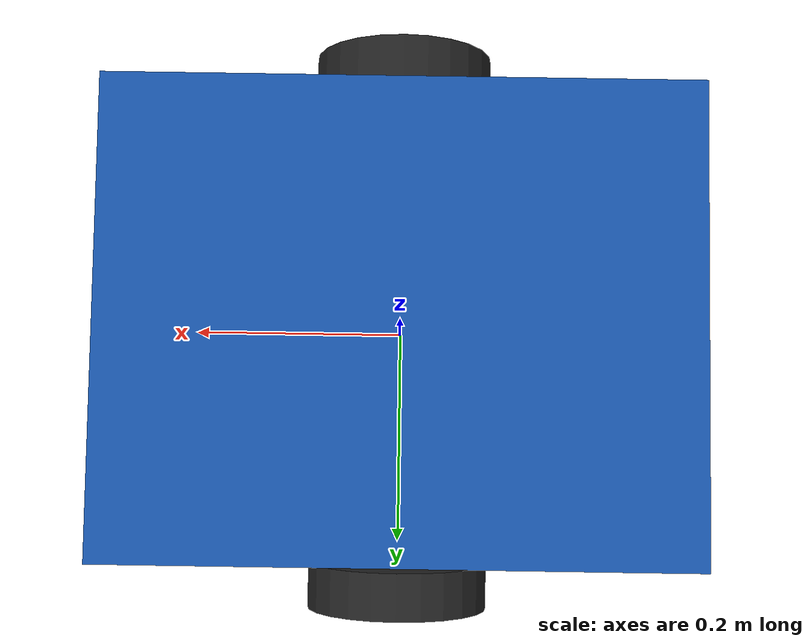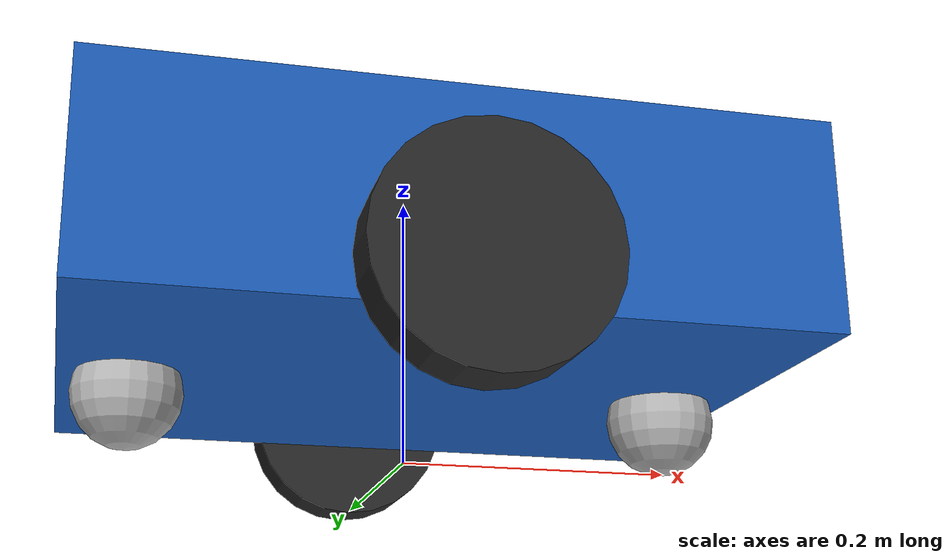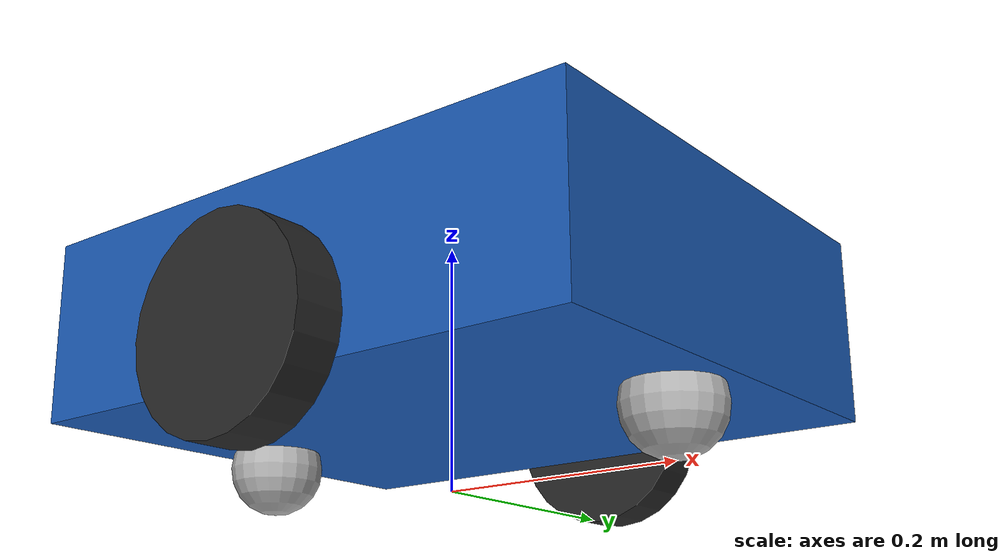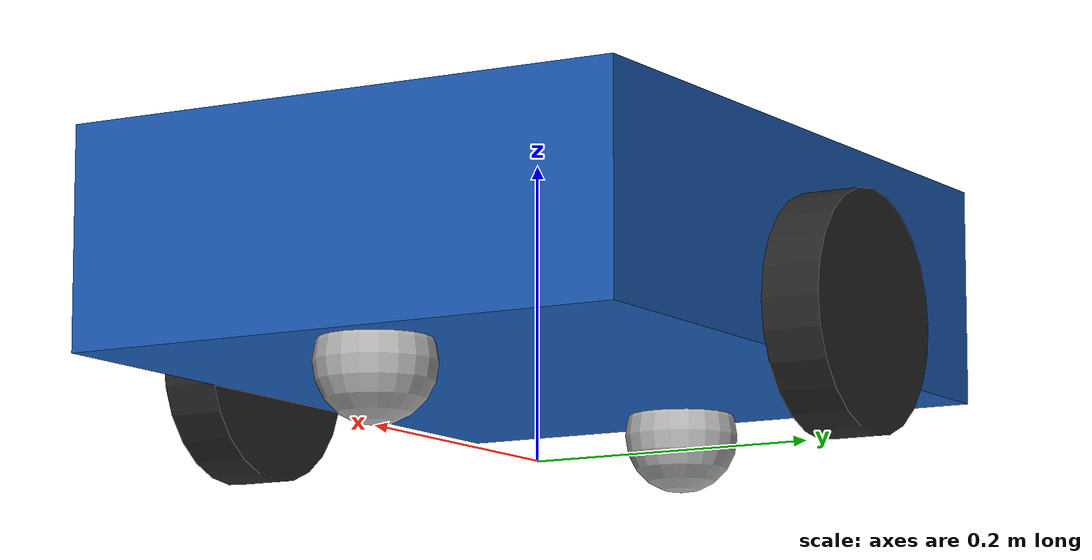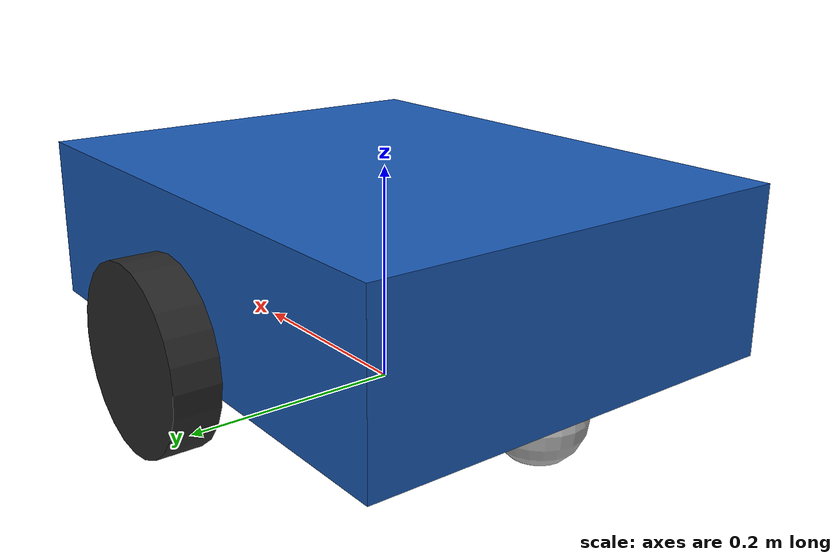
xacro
<?xml version="1.0" ?>

<robot name="nova" xmlns:xacro="http://www.ros.org/wiki/xacro">

  <!-- Chassis: The chassis is a box, the geometry of the base_link -->
  <xacro:property name="chassis_length" value="0.50" /> <!-- x axis, front to back -->
  <xacro:property name="chassis_width" value="0.40" />  <!-- y axis, side to side -->
  <xacro:property name="chassis_height" value="0.15" /> <!-- z axis, bottom to top -->
  <xacro:property name="chassis_mass"  value="12" />
  <xacro:property name="chassis_z_offset" value="0.05" />

  <!-- Drive wheels -->
  <xacro:property name="wheel_radius" value="0.08" />
  <xacro:property name="wheel_width" value="0.04" />
  <xacro:property name="wheel_mass" value="1.0" />
  <xacro:property name="wheel_separation" value="0.46" />

  <!-- Casters -->
  <xacro:property name="caster_radius" value="0.04" />
  <xacro:property name="caster_mass" value="0.3" />
  <xacro:property name="caster_x" value="0.20" />

  <xacro:include filename="$(find nova_description)/urdf/materials.xacro" />
  <xacro:include filename="$(find nova_description)/urdf/inertials.xacro" />
  <xacro:include filename="$(find nova_description)/urdf/base.xacro" />
  <xacro:include filename="$(find nova_description)/urdf/wheel.xacro" />
  <xacro:wheel reflect="1" side="left" />
  <xacro:wheel reflect="-1" side="right" />

</robot>

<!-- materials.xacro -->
<robot>
  <material name="nova_blue">

    <color rgba="0.10 0.35 0.70 1.0" />

  </material>

  <material name="nova_dark_grey">

    <color rgba="0.15 0.15 0.15 1.0" />

  </material>

  <material name="nova_light_grey">

    <color rgba="0.7 0.7 0.7 1.0" />

  </material>

</robot>

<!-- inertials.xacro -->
<robot xmlns:xacro="http://www.ros.org/wiki/xacro">

  <xacro:macro name="box_inertia" params="mass x y z xyz:='0 0 0' rpy:='0 0 0'">

    <inertial>

      <origin xyz="${xyz}" rpy="${rpy}" />
      <mass value="${mass}" />

      <inertia ixx="${mass/12*(y*y + z*z)}" ixy="0" ixz="0"
               iyy="${mass/12*(x*x + z*z)}" iyz="0"
               izz="${mass/12*(x*x + y*y)}"/>

    </inertial>

  </xacro:macro>

  <xacro:macro name="cylinder_inertia" params="mass r h xyz:='0 0 0' rpy:='0 0 0'">

    <inertial>

      <origin xyz="${xyz}" rpy="${rpy}" />

      <mass value="${mass}" />

      <inertia ixx="${mass/12*(3*r**2 + h**2)}" ixy="0" ixz="0"
               iyy="${mass/12*(3*r**2 + h**2)}" iyz="0"
               izz="${(mass*r**2)/2}"  />

    </inertial>

  </xacro:macro>

  <xacro:macro name="sphere_inertia" params="mass r xyz:='0 0 0' rpy:='0 0 0'">

    <inertial>
      <origin xyz="${xyz}" rpy="${rpy}" />

      <mass value="${mass}" />

      <inertia ixx="${2/5*mass*r**2}" ixy="0" ixz="0"
               iyy="${2/5*mass*r**2}" iyz="0"
               izz="${2/5*mass*r**2}"  />

    </inertial>

  </xacro:macro>
</robot>

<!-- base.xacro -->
<robot xmlns:xacro="http://www.ros.org/wiki/xacro">

  <!-- Root frame. It is on the ground. It is empty -->

  <link name="base_footprint" />

  <link name="base_link">

    <visual>

      <origin xyz="0 0 ${chassis_z_offset}" rpy="0 0 0" />
      <geometry>
        <box size="${chassis_length} ${chassis_width} ${chassis_height}" />
      </geometry>

      <material name="nova_blue" />

    </visual>

    <collision>
      <origin xyz="0 0 ${chassis_z_offset}" rpy="0 0 0" />

      <geometry>
        <box size="${chassis_length} ${chassis_width} ${chassis_height}" />
      </geometry>

    </collision>

    <xacro:box_inertia mass="${chassis_mass}" x="${chassis_length}" y="${chassis_width}"
                       z="${chassis_height}" xyz="0 0 ${chassis_z_offset}"  />
  </link>

  <joint name="base_joint" type="fixed">
    <parent link="base_footprint" />
    <child link="base_link" />
    <origin xyz="0 0 ${wheel_radius}" rpy="0 0 0" />

  </joint>

  <xacro:macro name="caster" params="name_prefix x">

    <link name="${name_prefix}_caster_link">

      <visual>

        <origin xyz="0 0 0" rpy="0 0 0" />
        <geometry>
          <sphere radius="${caster_radius}" />

        </geometry>

        <material name="nova_light_grey" />

      </visual>

      <collision>

        <origin xyz="0 0 0" rpy="0 0 0" />
        <geometry>

          <sphere radius="${caster_radius}" />

        </geometry>

      </collision>

      <xacro:sphere_inertia mass="${caster_mass}" r="${caster_radius}" />

    </link>

    <joint name="${name_prefix}_caster_joint" type="fixed">

      <parent link="base_link" />
      <child link="${name_prefix}_caster_link" />

      <origin xyz="${x} 0 ${caster_radius - wheel_radius}" rpy="0 0 0" />
    </joint>
  </xacro:macro>

  <xacro:caster name_prefix="front" x="${caster_x}" />

  <xacro:caster name_prefix="rear" x="${-caster_x}" />
</robot>

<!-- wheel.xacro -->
<robot xmlns:xacro="http://www.ros.org/wiki/xacro">

  <xacro:macro name="wheel" params="side reflect" >

    <link name="${side}_wheel_link" >

      <visual>

        <origin xyz="0 0 0" rpy="${pi/2} 0 0" />

        <geometry>

          <cylinder radius="${wheel_radius}" length="${wheel_width}" />

        </geometry>

        <material name="nova_dark_grey" />

      </visual>

      <collision>

        <origin xyz="0 0 0" rpy="${pi/2} 0 0" />

        <geometry>

          <cylinder radius="${wheel_radius}" length="${wheel_width}" />

        </geometry>

      </collision>

      <xacro:cylinder_inertia mass="${wheel_mass}" r="${wheel_radius}" h="${wheel_width}" rpy="${pi/2} 0 0" />

    </link>

    <joint name="${side}_wheel_joint" type="continuous">

      <origin xyz="0 ${reflect * wheel_separation / 2} 0" rpy="0 0 0" />

      <parent link="base_link" />
      <child link="${side}_wheel_link" />
      <axis xyz="0 1 0" />
    </joint>

  </xacro:macro>

</robot>
